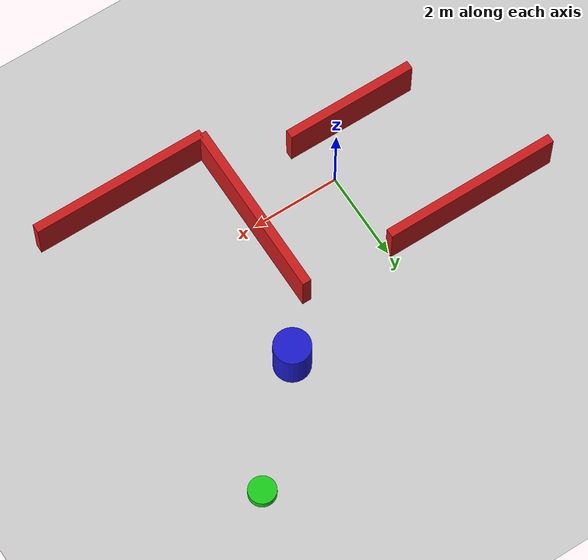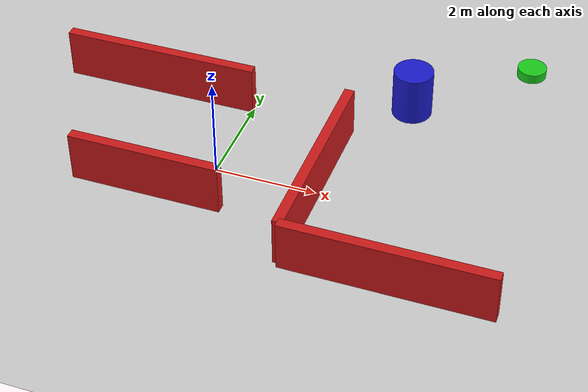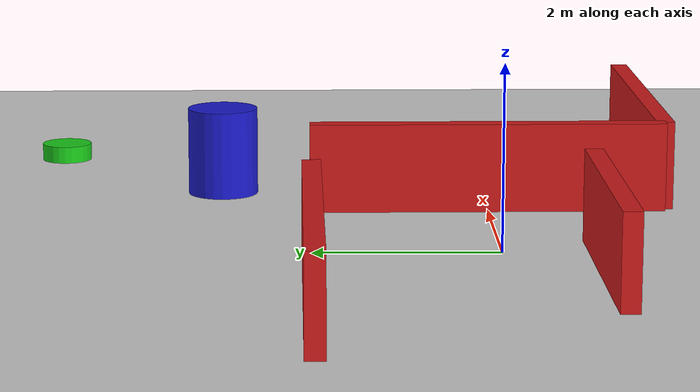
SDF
<?xml version="1.0" ?>
<sdf version="1.6">
  <world name="Group1World">
    <!-- A global light source -->
    <include>
      <uri>model://sun</uri>
    </include>

    <!-- A ground plane -->
    <include>
      <uri>model://ground_plane</uri>
    </include>

    <!-- Static obstacles: walls to create a maze-like environment -->
    <model name="wall1">
      <static>true</static>
      <pose>2 0 0.5 0 0 0</pose>
      <link name="link">
        <collision name="collision">
          <geometry>
            <box>
              <size>0.2 4 1</size>
            </box>
          </geometry>
        </collision>
        <visual name="visual">
          <geometry>
            <box>
              <size>0.2 4 1</size>
            </box>
          </geometry>
          <material>
            <ambient>0.8 0.1 0.1 1</ambient>
            <diffuse>0.8 0.1 0.1 1</diffuse>
          </material>
        </visual>
      </link>
    </model>

    <model name="wall2">
      <static>true</static>
      <pose>4 -2 0.5 0 0 0</pose>
      <link name="link">
        <collision name="collision">
          <geometry>
            <box>
              <size>4 0.2 1</size>
            </box>
          </geometry>
        </collision>
        <visual name="visual">
          <geometry>
            <box>
              <size>4 0.2 1</size>
            </box>
          </geometry>
          <material>
            <ambient>0.8 0.1 0.1 1</ambient>
            <diffuse>0.8 0.1 0.1 1</diffuse>
          </material>
        </visual>
      </link>
    </model>

    <model name="wall3">
      <static>true</static>
      <pose>-2 2 0.5 0 0 0</pose>
      <link name="link">
        <collision name="collision">
          <geometry>
            <box>
              <size>4 0.2 1</size>
            </box>
          </geometry>
        </collision>
        <visual name="visual">
          <geometry>
            <box>
              <size>4 0.2 1</size>
            </box>
          </geometry>
          <material>
            <ambient>0.8 0.1 0.1 1</ambient>
            <diffuse>0.8 0.1 0.1 1</diffuse>
          </material>
        </visual>
      </link>
    </model>

    <model name="wall4">
      <static>true</static>
      <pose>-1 -1 0.5 0 0 1.57</pose>
      <link name="link">
        <collision name="collision">
          <geometry>
            <box>
              <size>0.2 3 1</size>
            </box>
          </geometry>
        </collision>
        <visual name="visual">
          <geometry>
            <box>
              <size>0.2 3 1</size>
            </box>
          </geometry>
          <material>
            <ambient>0.8 0.1 0.1 1</ambient>
            <diffuse>0.8 0.1 0.1 1</diffuse>
          </material>
        </visual>
      </link>
    </model>

    <!-- Dynamic/Mobile obstacle -->
    <model name="mobile_obstacle1">
      <pose>3 3 0.5 0 0 0</pose>
      <link name="link">
        <collision name="collision">
          <geometry>
            <cylinder>
              <radius>0.4</radius>
              <length>1</length>
            </cylinder>
          </geometry>
        </collision>
        <visual name="visual">
          <geometry>
            <cylinder>
              <radius>0.4</radius>
              <length>1</length>
            </cylinder>
          </geometry>
          <material>
            <ambient>0.1 0.1 0.8 1</ambient>
            <diffuse>0.1 0.1 0.8 1</diffuse>
          </material>
        </visual>
        <inertial>
          <mass>1.0</mass>
          <inertia>
            <ixx>0.1</ixx>
            <ixy>0</ixy>
            <ixz>0</ixz>
            <iyy>0.1</iyy>
            <iyz>0</iyz>
            <izz>0.1</izz>
          </inertia>
        </inertial>
      </link>

      <!-- Add a simple motion to the obstacle -->
      <plugin name="obstacle_mover" filename="libModelPush.so">
        <linear_velocity>0.2 0.0 0</linear_velocity>
        <mut>0.2</mut>
      </plugin>
    </model>

    <!-- Goal marker -->
    <model name="goal_marker">
      <static>true</static>
      <pose>5 5 0.1 0 0 0</pose>
      <link name="link">
        <collision name="collision">
          <geometry>
            <cylinder>
              <radius>0.3</radius>
              <length>0.2</length>
            </cylinder>
          </geometry>
        </collision>
        <visual name="visual">
          <geometry>
            <cylinder>
              <radius>0.3</radius>
              <length>0.2</length>
            </cylinder>
          </geometry>
          <material>
            <ambient>0.1 0.8 0.1 1</ambient>
            <diffuse>0.1 0.8 0.1 1</diffuse>
            <emissive>0 0.5 0 1</emissive>
          </material>
        </visual>
      </link>
    </model>
  </world>
</sdf>
